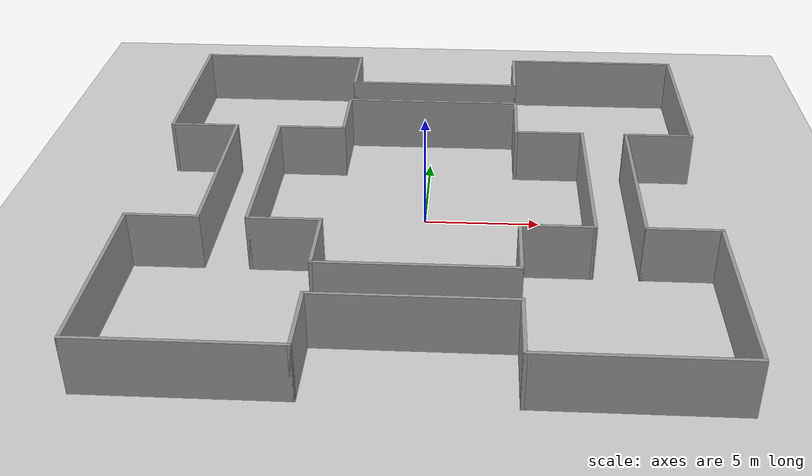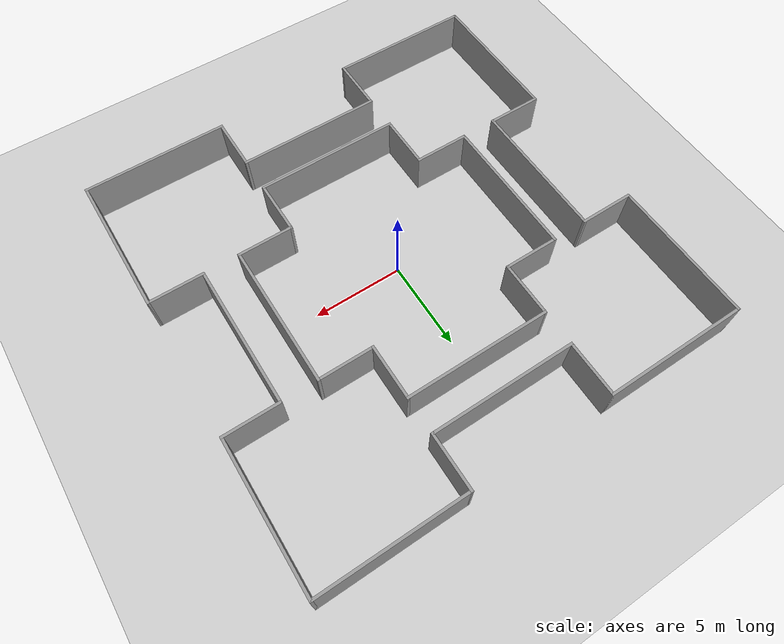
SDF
<sdf version="1.6">
 <world name="default">
  <light name="sun" type="directional">
   <pose>0 0 10 0 -0 0</pose>
   <diffuse>0.8 0.8 0.8 1</diffuse>
   <specular>0.2 0.2 0.2 1</specular>
   <attenuation>
    <range>1000</range>
    <constant>0.9</constant>
    <linear>0.01</linear>
    <quadratic>0.001</quadratic>
   </attenuation>
   <direction>-0.5 0.1 -0.9</direction>
  </light>
  <model name="ground_plane">
   <static>1</static>
   <link name="link">
    <collision name="collision">
     <geometry><plane><normal>0 0 1</normal><size>100 100</size></plane></geometry>
     <surface>
      <contact><collide_bitmask>65535</collide_bitmask></contact>
      <friction><ode><mu>100</mu><mu2>50</mu2></ode></friction>
     </surface>
    </collision>
    <visual name="visual">
     <cast_shadows>0</cast_shadows>
     <geometry><plane><normal>0 0 1</normal><size>100 100</size></plane></geometry>
     <material>
      <script><uri>file://media/materials/scripts/gazebo.material</uri><name>Gazebo/Grey</name></script>
     </material>
    </visual>
   </link>
  </model>
  <gravity>0 0 -9.8</gravity>
  <magnetic_field>6e-06 2.3e-05 -4.2e-05</magnetic_field>
  <atmosphere type="adiabatic"/>
  <physics name="default_physics" default="0" type="ode">
   <max_step_size>0.001</max_step_size>
   <real_time_factor>1</real_time_factor>
   <real_time_update_rate>1000</real_time_update_rate>
  </physics>
  <scene><ambient>0.4 0.4 0.4 1</ambient><background>0.7 0.7 0.7 1</background><shadows>1</shadows></scene>
  <audio><device>default</device></audio>
  <spherical_coordinates>
   <surface_model>EARTH_WGS84</surface_model>
   <latitude_deg>0</latitude_deg>
   <longitude_deg>0</longitude_deg>
   <elevation>0</elevation>
   <heading_deg>0</heading_deg>
  </spherical_coordinates>
  <model name="loop_with_corridor_sym">
   <link name="Wall_16">
    <collision name="Wall_16_Collision">
     <geometry><box><size>8.15 0.15 2.5</size></box></geometry>
     <pose>0 0 1.25 0 -0 0</pose>
    </collision>
    <visual name="Wall_16_Visual">
     <pose>0 0 1.25 0 -0 0</pose>
     <geometry><box><size>8.15 0.15 2.5</size></box></geometry>
     <material>
      <script><uri>file://media/materials/scripts/gazebo.material</uri><name>Gazebo/Grey</name></script>
      <ambient>1 1 1 1</ambient>
     </material>
     <meta><layer>0</layer></meta>
    </visual>
    <pose>-8 -12 0 0 -0 0</pose>
   </link>
   <link name="Wall_18">
    <collision name="Wall_18_Collision">
     <geometry><box><size>8.15 0.15 2.5</size></box></geometry>
     <pose>0 0 1.25 0 -0 0</pose>
    </collision>
    <visual name="Wall_18_Visual">
     <pose>0 0 1.25 0 -0 0</pose>
     <geometry><box><size>8.15 0.15 2.5</size></box></geometry>
     <material>
      <script><uri>file://media/materials/scripts/gazebo.material</uri><name>Gazebo/Grey</name></script>
      <ambient>1 1 1 1</ambient>
     </material>
     <meta><layer>0</layer></meta>
    </visual>
    <pose>-12 -8 0 0 -0 1.5708</pose>
   </link>
   <link name="Wall_19">
    <collision name="Wall_19_Collision">
     <geometry><box><size>3.15 0.15 2.5</size></box></geometry>
     <pose>0 0 1.25 0 -0 0</pose>
    </collision>
    <visual name="Wall_19_Visual">
     <pose>0 0 1.25 0 -0 0</pose>
     <geometry><box><size>3.15 0.15 2.5</size></box></geometry>
     <material>
      <script><uri>file://media/materials/scripts/gazebo.material</uri><name>Gazebo/Grey</name></script>
      <ambient>1 1 1 1</ambient>
     </material>
     <meta><layer>0</layer></meta>
    </visual>
    <pose>-10.5 -4 0 0 -0 0</pose>
   </link>
   <link name="Wall_20">
    <collision name="Wall_20_Collision">
     <geometry><box><size>8.15 0.15 2.5</size></box></geometry>
     <pose>0 0 1.25 0 -0 0</pose>
    </collision>
    <visual name="Wall_20_Visual">
     <pose>0 0 1.25 0 -0 0</pose>
     <geometry><box><size>8.15 0.15 2.5</size></box></geometry>
     <material>
      <script><uri>file://media/materials/scripts/gazebo.material</uri><name>Gazebo/Grey</name></script>
      <ambient>1 1 1 1</ambient>
     </material>
     <meta><layer>0</layer></meta>
    </visual>
    <pose>-9 0 0 0 -0 1.5708</pose>
   </link>
   <link name="Wall_21">
    <collision name="Wall_21_Collision">
     <geometry><box><size>3.15 0.15 2.5</size></box></geometry>
     <pose>0 0 1.25 0 -0 0</pose>
    </collision>
    <visual name="Wall_21_Visual">
     <pose>0 0 1.25 0 -0 0</pose>
     <geometry><box><size>3.15 0.15 2.5</size></box></geometry>
     <material>
      <script><uri>file://media/materials/scripts/gazebo.material</uri><name>Gazebo/Grey</name></script>
      <ambient>1 1 1 1</ambient>
     </material>
     <meta><layer>0</layer></meta>
    </visual>
    <pose>-10.5 4 0 0 -0 3.14159</pose>
   </link>
   <link name="Wall_22">
    <collision name="Wall_22_Collision">
     <geometry><box><size>8.15 0.15 2.5</size></box></geometry>
     <pose>0 0 1.25 0 -0 0</pose>
    </collision>
    <visual name="Wall_22_Visual">
     <pose>0 0 1.25 0 -0 0</pose>
     <geometry><box><size>8.15 0.15 2.5</size></box></geometry>
     <material>
      <script><uri>file://media/materials/scripts/gazebo.material</uri><name>Gazebo/Grey</name></script>
      <ambient>1 1 1 1</ambient>
     </material>
     <meta><layer>0</layer></meta>
    </visual>
    <pose>-12 8 0 0 -0 1.5708</pose>
   </link>
   <link name="Wall_23">
    <collision name="Wall_23_Collision">
     <geometry><box><size>8.15 0.15 2.5</size></box></geometry>
     <pose>0 0 1.25 0 -0 0</pose>
    </collision>
    <visual name="Wall_23_Visual">
     <pose>0 0 1.25 0 -0 0</pose>
     <geometry><box><size>8.15 0.15 2.5</size></box></geometry>
     <material>
      <script><uri>file://media/materials/scripts/gazebo.material</uri><name>Gazebo/Grey</name></script>
      <ambient>1 1 1 1</ambient>
     </material>
     <meta><layer>0</layer></meta>
    </visual>
    <pose>-8 12 0 0 -0 0</pose>
   </link>
   <link name="Wall_24">
    <collision name="Wall_24_Collision">
     <geometry><box><size>3.15 0.15 2.5</size></box></geometry>
     <pose>0 0 1.25 0 -0 0</pose>
    </collision>
    <visual name="Wall_24_Visual">
     <pose>0 0 1.25 0 -0 0</pose>
     <geometry><box><size>3.15 0.15 2.5</size></box></geometry>
     <material>
      <script><uri>file://media/materials/scripts/gazebo.material</uri><name>Gazebo/Grey</name></script>
      <ambient>1 1 1 1</ambient>
     </material>
     <meta><layer>0</layer></meta>
    </visual>
    <pose>-4 10.5 0 0 -0 -1.5708</pose>
   </link>
   <link name="Wall_25">
    <collision name="Wall_25_Collision">
     <geometry><box><size>8.15 0.15 2.5</size></box></geometry>
     <pose>0 0 1.25 0 -0 0</pose>
    </collision>
    <visual name="Wall_25_Visual">
     <pose>0 0 1.25 0 -0 0</pose>
     <geometry><box><size>8.15 0.15 2.5</size></box></geometry>
     <material>
      <script><uri>file://media/materials/scripts/gazebo.material</uri><name>Gazebo/Grey</name></script>
      <ambient>1 1 1 1</ambient>
     </material>
     <meta><layer>0</layer></meta>
    </visual>
    <pose>0 9 0 0 -0 0</pose>
   </link>
   <link name="Wall_26">
    <collision name="Wall_26_Collision">
     <geometry><box><size>3.15 0.15 2.5</size></box></geometry>
     <pose>0 0 1.25 0 -0 0</pose>
    </collision>
    <visual name="Wall_26_Visual">
     <pose>0 0 1.25 0 -0 0</pose>
     <geometry><box><size>3.15 0.15 2.5</size></box></geometry>
     <material>
      <script><uri>file://media/materials/scripts/gazebo.material</uri><name>Gazebo/Grey</name></script>
      <ambient>1 1 1 1</ambient>
     </material>
     <meta><layer>0</layer></meta>
    </visual>
    <pose>4 10.5 0 0 -0 1.5708</pose>
   </link>
   <link name="Wall_27">
    <collision name="Wall_27_Collision">
     <geometry><box><size>8.15 0.15 2.5</size></box></geometry>
     <pose>0 0 1.25 0 -0 0</pose>
    </collision>
    <visual name="Wall_27_Visual">
     <pose>0 0 1.25 0 -0 0</pose>
     <geometry><box><size>8.15 0.15 2.5</size></box></geometry>
     <material>
      <script><uri>file://media/materials/scripts/gazebo.material</uri><name>Gazebo/Grey</name></script>
      <ambient>1 1 1 1</ambient>
     </material>
     <meta><layer>0</layer></meta>
    </visual>
    <pose>8 12 0 0 -0 0</pose>
   </link>
   <link name="Wall_28">
    <collision name="Wall_28_Collision">
     <geometry><box><size>8.15 0.15 2.5</size></box></geometry>
     <pose>0 0 1.25 0 -0 0</pose>
    </collision>
    <visual name="Wall_28_Visual">
     <pose>0 0 1.25 0 -0 0</pose>
     <geometry><box><size>8.15 0.15 2.5</size></box></geometry>
     <material>
      <script><uri>file://media/materials/scripts/gazebo.material</uri><name>Gazebo/Grey</name></script>
      <ambient>1 1 1 1</ambient>
     </material>
     <meta><layer>0</layer></meta>
    </visual>
    <pose>12 8 0 0 -0 -1.5708</pose>
   </link>
   <link name="Wall_29">
    <collision name="Wall_29_Collision">
     <geometry><box><size>3.15 0.15 2.5</size></box></geometry>
     <pose>0 0 1.25 0 -0 0</pose>
    </collision>
    <visual name="Wall_29_Visual">
     <pose>0 0 1.25 0 -0 0</pose>
     <geometry><box><size>3.15 0.15 2.5</size></box></geometry>
     <material>
      <script><uri>file://media/materials/scripts/gazebo.material</uri><name>Gazebo/Grey</name></script>
      <ambient>1 1 1 1</ambient>
     </material>
     <meta><layer>0</layer></meta>
    </visual>
    <pose>10.5 4 0 0 -0 3.14159</pose>
   </link>
   <link name="Wall_30">
    <collision name="Wall_30_Collision">
     <geometry><box><size>8.15 0.15 2.5</size></box></geometry>
     <pose>0 0 1.25 0 -0 0</pose>
    </collision>
    <visual name="Wall_30_Visual">
     <pose>0 0 1.25 0 -0 0</pose>
     <geometry><box><size>8.15 0.15 2.5</size></box></geometry>
     <material>
      <script><uri>file://media/materials/scripts/gazebo.material</uri><name>Gazebo/Grey</name></script>
      <ambient>1 1 1 1</ambient>
     </material>
     <meta><layer>0</layer></meta>
    </visual>
    <pose>9 0 0 0 -0 -1.5708</pose>
   </link>
   <link name="Wall_31">
    <collision name="Wall_31_Collision">
     <geometry><box><size>3.15 0.15 2.5</size></box></geometry>
     <pose>0 0 1.25 0 -0 0</pose>
    </collision>
    <visual name="Wall_31_Visual">
     <pose>0 0 1.25 0 -0 0</pose>
     <geometry><box><size>3.15 0.15 2.5</size></box></geometry>
     <material>
      <script><uri>file://media/materials/scripts/gazebo.material</uri><name>Gazebo/Grey</name></script>
      <ambient>1 1 1 1</ambient>
     </material>
     <meta><layer>0</layer></meta>
    </visual>
    <pose>10.5 -4 0 0 -0 0</pose>
   </link>
   <link name="Wall_32">
    <collision name="Wall_32_Collision">
     <geometry><box><size>8.15 0.15 2.5</size></box></geometry>
     <pose>0 0 1.25 0 -0 0</pose>
    </collision>
    <visual name="Wall_32_Visual">
     <pose>0 0 1.25 0 -0 0</pose>
     <geometry><box><size>8.15 0.15 2.5</size></box></geometry>
     <material>
      <script><uri>file://media/materials/scripts/gazebo.material</uri><name>Gazebo/Grey</name></script>
      <ambient>1 1 1 1</ambient>
     </material>
     <meta><layer>0</layer></meta>
    </visual>
    <pose>12 -8 0 0 -0 -1.5708</pose>
   </link>
   <link name="Wall_33">
    <collision name="Wall_33_Collision">
     <geometry><box><size>8.15 0.15 2.5</size></box></geometry>
     <pose>0 0 1.25 0 -0 0</pose>
    </collision>
    <visual name="Wall_33_Visual">
     <pose>0 0 1.25 0 -0 0</pose>
     <geometry><box><size>8.15 0.15 2.5</size></box></geometry>
     <material>
      <script><uri>file://media/materials/scripts/gazebo.material</uri><name>Gazebo/Grey</name></script>
      <ambient>1 1 1 1</ambient>
     </material>
     <meta><layer>0</layer></meta>
    </visual>
    <pose>8 -12 0 0 -0 3.14159</pose>
   </link>
   <link name="Wall_34">
    <collision name="Wall_34_Collision">
     <geometry><box><size>3.15 0.15 2.5</size></box></geometry>
     <pose>0 0 1.25 0 -0 0</pose>
    </collision>
    <visual name="Wall_34_Visual">
     <pose>0 0 1.25 0 -0 0</pose>
     <geometry><box><size>3.15 0.15 2.5</size></box></geometry>
     <material>
      <script><uri>file://media/materials/scripts/gazebo.material</uri><name>Gazebo/Grey</name></script>
      <ambient>1 1 1 1</ambient>
     </material>
     <meta><layer>0</layer></meta>
    </visual>
    <pose>4 -10.5 0 0 -0 1.5708</pose>
   </link>
   <link name="Wall_35">
    <collision name="Wall_35_Collision">
     <geometry><box><size>8.15 0.15 2.5</size></box></geometry>
     <pose>0 0 1.25 0 -0 0</pose>
    </collision>
    <visual name="Wall_35_Visual">
     <pose>0 0 1.25 0 -0 0</pose>
     <geometry><box><size>8.15 0.15 2.5</size></box></geometry>
     <material>
      <script><uri>file://media/materials/scripts/gazebo.material</uri><name>Gazebo/Grey</name></script>
      <ambient>1 1 1 1</ambient>
     </material>
     <meta><layer>0</layer></meta>
    </visual>
    <pose>0 -9 0 0 -0 3.14159</pose>
   </link>
   <link name="Wall_36">
    <collision name="Wall_36_Collision">
     <geometry><box><size>3.15 0.15 2.5</size></box></geometry>
     <pose>0 0 1.25 0 -0 0</pose>
    </collision>
    <visual name="Wall_36_Visual">
     <pose>0 0 1.25 0 -0 0</pose>
     <geometry><box><size>3.15 0.15 2.5</size></box></geometry>
     <material>
      <script><uri>file://media/materials/scripts/gazebo.material</uri><name>Gazebo/Grey</name></script>
      <ambient>1 1 1 1</ambient>
     </material>
     <meta><layer>0</layer></meta>
    </visual>
    <pose>-4 -10.5 0 0 -0 -1.5708</pose>
   </link>
   <link name="Wall_38">
    <collision name="Wall_38_Collision">
     <geometry><box><size>8.15 0.15 2.5</size></box></geometry>
     <pose>0 0 1.25 0 -0 0</pose>
    </collision>
    <visual name="Wall_38_Visual">
     <pose>0 0 1.25 0 -0 0</pose>
     <geometry><box><size>8.15 0.15 2.5</size></box></geometry>
     <material>
      <script><uri>file://media/materials/scripts/gazebo.material</uri><name>Gazebo/Grey</name></script>
      <ambient>1 1 1 1</ambient>
     </material>
     <meta><layer>0</layer></meta>
    </visual>
    <pose>0 -7 0 0 -0 0</pose>
   </link>
   <link name="Wall_39">
    <collision name="Wall_39_Collision">
     <geometry><box><size>3.15 0.15 2.5</size></box></geometry>
     <pose>0 0 1.25 0 -0 0</pose>
    </collision>
    <visual name="Wall_39_Visual">
     <pose>0 0 1.25 0 -0 0</pose>
     <geometry><box><size>3.15 0.15 2.5</size></box></geometry>
     <material>
      <script><uri>file://media/materials/scripts/gazebo.material</uri><name>Gazebo/Grey</name></script>
      <ambient>1 1 1 1</ambient>
     </material>
     <meta><layer>0</layer></meta>
    </visual>
    <pose>4 -5.5 0 0 -0 1.5708</pose>
   </link>
   <link name="Wall_40">
    <collision name="Wall_40_Collision">
     <geometry><box><size>3.15 0.15 2.5</size></box></geometry>
     <pose>0 0 1.25 0 -0 0</pose>
    </collision>
    <visual name="Wall_40_Visual">
     <pose>0 0 1.25 0 -0 0</pose>
     <geometry><box><size>3.15 0.15 2.5</size></box></geometry>
     <material>
      <script><uri>file://media/materials/scripts/gazebo.material</uri><name>Gazebo/Grey</name></script>
      <ambient>1 1 1 1</ambient>
     </material>
     <meta><layer>0</layer></meta>
    </visual>
    <pose>5.5 -4 0 0 -0 0</pose>
   </link>
   <link name="Wall_41">
    <collision name="Wall_41_Collision">
     <geometry><box><size>8.15 0.15 2.5</size></box></geometry>
     <pose>0 0 1.25 0 -0 0</pose>
    </collision>
    <visual name="Wall_41_Visual">
     <pose>0 0 1.25 0 -0 0</pose>
     <geometry><box><size>8.15 0.15 2.5</size></box></geometry>
     <material>
      <script><uri>file://media/materials/scripts/gazebo.material</uri><name>Gazebo/Grey</name></script>
      <ambient>1 1 1 1</ambient>
     </material>
     <meta><layer>0</layer></meta>
    </visual>
    <pose>7 0 0 0 -0 1.5708</pose>
   </link>
   <link name="Wall_42">
    <collision name="Wall_42_Collision">
     <geometry><box><size>3.15 0.15 2.5</size></box></geometry>
     <pose>0 0 1.25 0 -0 0</pose>
    </collision>
    <visual name="Wall_42_Visual">
     <pose>0 0 1.25 0 -0 0</pose>
     <geometry><box><size>3.15 0.15 2.5</size></box></geometry>
     <material>
      <script><uri>file://media/materials/scripts/gazebo.material</uri><name>Gazebo/Grey</name></script>
      <ambient>1 1 1 1</ambient>
     </material>
     <meta><layer>0</layer></meta>
    </visual>
    <pose>5.5 4 0 0 -0 3.14159</pose>
   </link>
   <link name="Wall_45">
    <collision name="Wall_45_Collision">
     <geometry><box><size>3.15 0.15 2.5</size></box></geometry>
     <pose>0 0 1.25 0 -0 0</pose>
    </collision>
    <visual name="Wall_45_Visual">
     <pose>0 0 1.25 0 -0 0</pose>
     <geometry><box><size>3.15 0.15 2.5</size></box></geometry>
     <material>
      <script><uri>file://media/materials/scripts/gazebo.material</uri><name>Gazebo/Grey</name></script>
      <ambient>1 1 1 1</ambient>
     </material>
     <meta><layer>0</layer></meta>
    </visual>
    <pose>-5.5 4 0 0 -0 3.14159</pose>
   </link>
   <link name="Wall_48">
    <collision name="Wall_48_Collision">
     <geometry><box><size>3.15 0.15 2.5</size></box></geometry>
     <pose>0 0 1.25 0 -0 0</pose>
    </collision>
    <visual name="Wall_48_Visual">
     <pose>0 0 1.25 0 -0 0</pose>
     <geometry><box><size>3.15 0.15 2.5</size></box></geometry>
     <material>
      <script><uri>file://media/materials/scripts/gazebo.material</uri><name>Gazebo/Grey</name></script>
      <ambient>1 1 1 1</ambient>
     </material>
     <meta><layer>0</layer></meta>
    </visual>
    <pose>-5.5 -4 0 0 -0 0</pose>
   </link>
   <link name="Wall_49">
    <collision name="Wall_49_Collision">
     <geometry><box><size>3.15 0.15 2.5</size></box></geometry>
     <pose>0 0 1.25 0 -0 0</pose>
    </collision>
    <visual name="Wall_49_Visual">
     <pose>0 0 1.25 0 -0 0</pose>
     <geometry><box><size>3.15 0.15 2.5</size></box></geometry>
     <material>
      <script><uri>file://media/materials/scripts/gazebo.material</uri><name>Gazebo/Grey</name></script>
      <ambient>1 1 1 1</ambient>
     </material>
     <meta><layer>0</layer></meta>
    </visual>
    <pose>-4 -5.5 0 0 -0 -1.5708</pose>
   </link>
   <link name="Wall_51">
    <collision name="Wall_51_Collision">
     <geometry><box><size>8.15 0.15 2.5</size></box></geometry>
     <pose>0 0 1.25 0 -0 0</pose>
    </collision>
    <visual name="Wall_51_Visual">
     <pose>0 0 1.25 0 -0 0</pose>
     <geometry><box><size>8.15 0.15 2.5</size></box></geometry>
     <material>
      <script><uri>file://media/materials/scripts/gazebo.material</uri><name>Gazebo/Grey</name></script>
      <ambient>1 1 1 1</ambient>
     </material>
     <meta><layer>0</layer></meta>
    </visual>
    <pose>-7 0 0 0 -0 -1.5708</pose>
   </link>
   <link name="Wall_53">
    <collision name="Wall_53_Collision">
     <geometry><box><size>3.15 0.15 2.5</size></box></geometry>
     <pose>0 0 1.25 0 -0 0</pose>
    </collision>
    <visual name="Wall_53_Visual">
     <pose>0 0 1.25 0 -0 0</pose>
     <geometry><box><size>3.15 0.15 2.5</size></box></geometry>
     <material>
      <script><uri>file://media/materials/scripts/gazebo.material</uri><name>Gazebo/Grey</name></script>
      <ambient>1 1 1 1</ambient>
     </material>
     <meta><layer>0</layer></meta>
    </visual>
    <pose>-4 5.5 0 0 -0 1.5708</pose>
   </link>
   <link name="Wall_54">
    <collision name="Wall_54_Collision">
     <geometry><box><size>8.15 0.15 2.5</size></box></geometry>
     <pose>0 0 1.25 0 -0 0</pose>
    </collision>
    <visual name="Wall_54_Visual">
     <pose>0 0 1.25 0 -0 0</pose>
     <geometry><box><size>8.15 0.15 2.5</size></box></geometry>
     <material>
      <script><uri>file://media/materials/scripts/gazebo.material</uri><name>Gazebo/Grey</name></script>
      <ambient>1 1 1 1</ambient>
     </material>
     <meta><layer>0</layer></meta>
    </visual>
    <pose>0 7 0 0 -0 0</pose>
   </link>
   <link name="Wall_55">
    <collision name="Wall_55_Collision">
     <geometry><box><size>3.15 0.15 2.5</size></box></geometry>
     <pose>0 0 1.25 0 -0 0</pose>
    </collision>
    <visual name="Wall_55_Visual">
     <pose>0 0 1.25 0 -0 0</pose>
     <geometry><box><size>3.15 0.15 2.5</size></box></geometry>
     <material>
      <script><uri>file://media/materials/scripts/gazebo.material</uri><name>Gazebo/Grey</name></script>
      <ambient>1 1 1 1</ambient>
     </material>
     <meta><layer>0</layer></meta>
    </visual>
    <pose>4 5.5 0 0 -0 -1.5708</pose>
   </link>
   <static>1</static>
  </model>
  <plugin name="gazebo_occupancy_map" filename="libgazebo_2Dmap_plugin.so">
   <map_resolution>0.1</map_resolution>
   <map_height>0.3</map_height>
   <map_size_x>25</map_size_x>
   <map_size_y>25</map_size_y>
   <init_robot_x>10</init_robot_x>
   <init_robot_y>10</init_robot_y>
  </plugin>
 </world>
</sdf>
